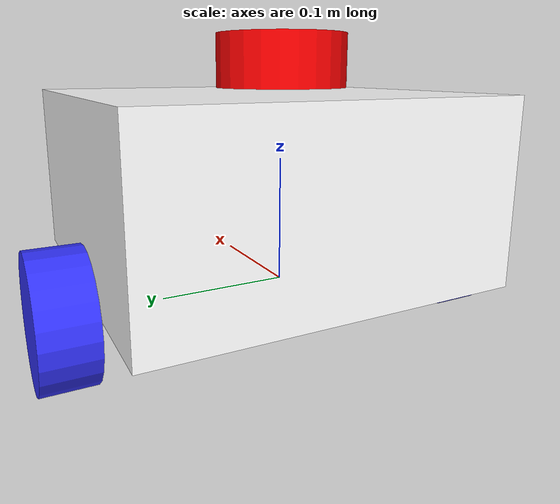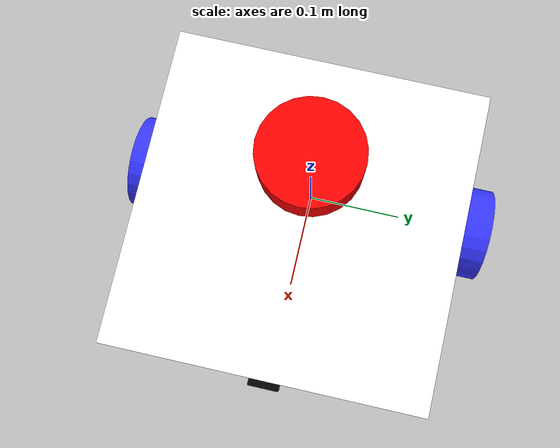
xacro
<?xml version="1.0"?>
<robot xmlns:xacro="http://www.ros.org/wiki/xacro"  name="robot">

    <xacro:include filename="$(find basic_bot)/description/robot_core.xacro" />

    <xacro:include filename="$(find basic_bot)/description/gazebo_control.xacro"/>

    <xacro:include filename="$(find basic_bot)/description/lidar.xacro"/>

    <xacro:include filename="$(find basic_bot)/description/camera.xacro"/>
</robot>

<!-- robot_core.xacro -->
<robot xmlns:xacro="http://www.ros.org/wiki/xacro" >

    <xacro:include filename="inertial_macros.xacro"/>

    <material name="white">
        <color rgba="1 1 1 1"/>
    </material>

    <material name="orange">
        <color rgba="1 0.3 0.1 1"/>
    </material>

    <material name="blue">
        <color rgba="0.2 0.2 1 1"/>
    </material>

    <material name="black">
        <color rgba="0 0 0 1"/>
    </material>

    <material name="red">
        <color rgba="1 0 0 1"/>
    </material>

    <!-- Base Link -->
    <link name="base_link">

    </link>

    <!-- Chassis Link -->
    <joint name="chassis_joint" type="fixed">
        <parent link="base_link"/>
        <child link="chassis_link"/>
        <origin xyz="-0.1 0.0 0.0" rpy="0.0 0.0 0.0"/>
    </joint>

    <link name="chassis_link">
        <visual>
            <origin xyz="0.15 0.0 0.075" rpy="0.0 0.0 0.0"/>
            <geometry>
                <box size="0.3 0.3 0.15"/>
            </geometry>
            <material name="white"/>
        </visual>

        <collision>
            <origin xyz="0.15 0.0 0.075" rpy="0.0 0.0 0.0"/>
            <geometry>
                <box size="0.3 0.3 0.15"/>
            </geometry>
        </collision>
        <xacro:inertial_box mass="0.5" x="0.3" y="0.3" z="0.3">
            <origin xyz="0.15 0.0 0.075" rpy="0.0 0.0 0.0"/>
        </xacro:inertial_box>

    </link>

    <gazebo reference="chassis_link">
    <material>Gazebo/White</material>
    </gazebo>

    <!-- Left Wheel Link -->

    <joint name="left_wheel_joint" type="continuous">
        <parent link="base_link"/>
        <child link="left_wheel_link"/>
        <origin xyz="0.0 0.175 0" rpy="-${pi/2} 0.0 0.0"/>
        <axis xyz="0.0 0.0 1"/>
    </joint>

    <link name="left_wheel_link">
        <visual>
            <geometry>
                <cylinder radius="0.05" length="0.04"/>
            </geometry>
            <material name='blue'/>
        </visual>

        <collision>
            <geometry>
                <cylinder radius="0.05" length="0.04"/>
            </geometry>
        </collision>

        <xacro:inertial_cylinder mass="0.1" length="0.04" radius="0.05">
            <origin xyz="0.0 0.0 0.0" rpy="0.0 0.0 0.0"/>
        </xacro:inertial_cylinder>
    </link>

    <gazebo reference="left_wheel_link">
        <material>Gazebo/Blue</material>
    </gazebo>

<!-- Right Wheel Link -->
    <joint name="right_wheel_joint" type="continuous">
        <parent link="base_link"/>
        <child link="right_wheel_link"/>
        <origin xyz="0.0 -0.175 0" rpy="${pi/2} 0.0 0.0"/>
        <axis xyz="0.0 0.0 -1"/>
    </joint>

    <link name="right_wheel_link">
        <visual>
            <geometry>
                <cylinder radius="0.05" length="0.04"/>
            </geometry>
            <material name='blue'/>
        </visual>

        <collision>
            <geometry>
                <cylinder radius="0.05" length="0.04"/>
            </geometry>
        </collision>

        <xacro:inertial_cylinder mass="0.1" length="0.04" radius="0.05">
            <origin xyz="0.0 0.0 0.0" rpy="0.0 0.0 0.0"/>
        </xacro:inertial_cylinder>
    </link>

    <gazebo reference="right_wheel_link">
        <material>Gazebo/Blue</material>
    </gazebo>

<!-- Caster Wheel Link -->

    <joint name="caster_joint" type="fixed">
        <parent link="chassis_link"/>
        <child link="caster_wheel_link"/>
        <origin xyz="0.2 0.0 0.0" rpy="0.0 0.0 0.0"/>
    </joint>

    <link name="caster_wheel_link">
        <visual>
            <geometry>
                <sphere radius="0.05"/>
            </geometry>
            <material name="black"/>
        </visual>

        <collision>
            <geometry>
                <sphere radius="0.05"/>
            </geometry>
        </collision>

        <xacro:inertial_sphere mass="0.1" radius="0.05">
            <origin xyz="0.0 0.0 0.0" rpy="0.0 0.0 0.0"/>
        </xacro:inertial_sphere>
    </link>

    <gazebo reference="caster_wheel_link">
        <material>Gazebo/Black</material>
        <mu1 value="0.001"/>
        <mu2 value="0.001"/>
    </gazebo>

</robot>

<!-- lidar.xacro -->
<robot xmlns:xacro="http://www.ros.org/wiki/xacro" >

    <joint name="laser_joint" type="fixed">
        <parent link="chassis_link"/>
        <child link="laser_link"/>
        <origin xyz="0.1 0 0.175" rpy="0 0 0"/>
    </joint>

    <link name="laser_link">
        <visual>
            <geometry>
                <cylinder radius="0.05" length="0.04"/>
            </geometry>
            <material name="red"/>
        </visual>
        <collision>
            <geometry>
                <cylinder radius="0.05" length="0.04"/>
            </geometry>
        </collision>
        <xacro:inertial_cylinder mass="0.1" length="0.04" radius="0.05">
            <origin xyz="0 0 0" rpy="0 0 0"/>
        </xacro:inertial_cylinder>
    </link>

    <gazebo reference="laser_link">
        <material>Gazebo/Red</material>
        <sensor name="laser" type="ray">
            <pose>0 0 0 0 0 0</pose>
            <visualize>false</visualize>
            <update_rate>10</update_rate>
            <ray>
                <scan>
                    <horizontal>
                        <samples>360</samples>
                        <min_angle>-3.14</min_angle>
                        <max_angle>3.14</max_angle>
                    </horizontal>
                </scan>
                <range>
                    <min>0.3</min>
                    <max>12</max>
                </range>
            </ray>

            <plugin name="laser_controller" filename="libgazebo_ros_ray_sensor.so">
                <ros>
                    <argument>~/out:=scan</argument>
                </ros>
                <output_type>sensor_msgs/LaserScan</output_type>
                <frame_name>laser_link</frame_name>
            </plugin>
        </sensor>

    </gazebo>
</robot>

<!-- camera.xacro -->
<robot xmlns:xacro="http://www.ros.org/wiki/xacro" >

    <joint name="camera_joint" type="fixed">
        <parent link="chassis_link"/>
        <child link="camera_link"/>
        <origin xyz="0.305 0 0.08" rpy="0 0 0"/>
    </joint>

    <link name="camera_link">
        <visual>
            <geometry>
                <box size="0.01 0.03 0.03"/>
            </geometry>
            <material name="black"/>
        </visual>
    </link>

    <joint name="camera_optical_joint" type="fixed">
        <parent link="camera_link"/>
        <child link="camera_link_optical"/>
        <origin xyz="0.0 0 0.0" rpy="${-pi/2} 0 ${-pi/2}"/>
    </joint>

    <link name="camera_link_optical"></link>
    <gazebo reference="camera_link">
        <material>Gazebo/Black</material>
        <sensor name="camera" type="camera">
            <pose>0 0 0 0 0 0</pose>
            <visualize>true</visualize>
            <update_rate>10</update_rate>
            <camera>
                <horizontal_fov>1.089</horizontal_fov>
                <image>
                    <format>R8G8B8</format>
                    <width>640</width>
                    <height>480</height>
                </image>

                <clip>
                    <near>0.05</near>
                    <far>8</far>
                </clip>
            </camera>

            <plugin name="camera_controller" filename="libgazebo_ros_camera.so">
                <frame_name>camera_link_optical</frame_name>
            </plugin>
        </sensor>

    </gazebo>
</robot>
